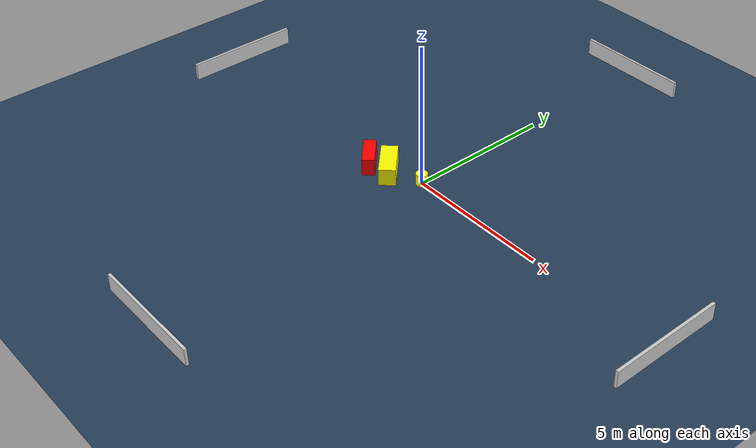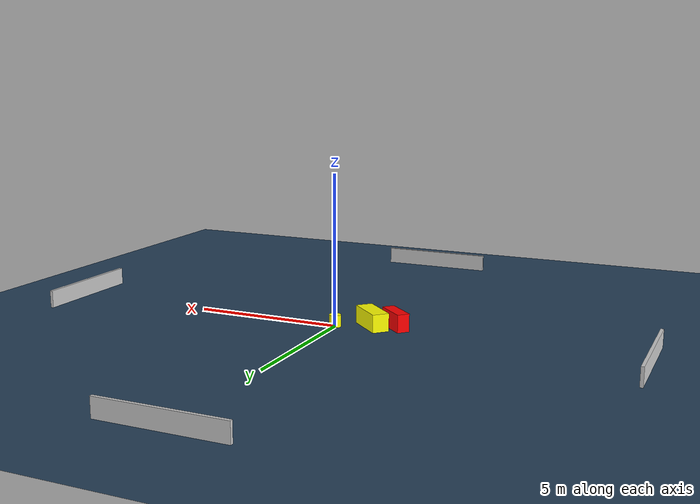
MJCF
<?xml version="1.0" ?>
<mujoco model="generated_environment">
  <option timestep="0.01" integrator="RK4" cone="elliptic"/>
  <default>
    <geom density="1"/>
  </default>
  <asset>
    <texture builtin="gradient" height="3072" name="skybox" rgb1="0.3 0.5 0.7" rgb2="0 0 0" type="skybox" width="512"/>
    <texture builtin="checker" height="300" name="groundplane" rgb1="0.2 0.3 0.4" rgb2="0.1 0.2 0.3" type="2d" width="300"/>
    <material name="groundplane" reflectance="0.2" texrepeat="5 5" texture="groundplane"/>
  </asset>
  <worldbody>
    <light dir="0 0 -1" directional="true" pos="0 0 1.5"/>
    <geom condim="3" friction="0.5 0.005 0.001" material="groundplane" name="floor" pos="0 0 0" size="0 0 0.05" type="plane"/>
    <body name="walls">
      <geom name="wall_1" condim="4" pos="-10.0 0.0 0.3" rgba="0.800000011920929 0.800000011920929 0.800000011920929 1.0" size="0.05 2.0 0.3" type="box"/>
      <geom name="wall_2" condim="4" pos="10.0 0.0 0.3" rgba="0.800000011920929 0.800000011920929 0.800000011920929 1.0" size="0.05 2.0 0.3" type="box"/>
      <geom name="wall_3" condim="4" pos="0.0 -10.0 0.3" rgba="0.800000011920929 0.800000011920929 0.800000011920929 1.0" size="2.0 0.05 0.3" type="box"/>
      <geom name="wall_4" condim="4" pos="0.0 10.0 0.3" rgba="0.800000011920929 0.800000011920929 0.800000011920929 1.0" size="2.0 0.05 0.3" type="box"/>
    </body>
    <body name="robot">
      <joint name="joint_x" type="slide" pos="0 0 0" axis="1 0 0"/>
      <joint name="joint_y" type="slide" pos="0 0 0" axis="0 1 0"/>
      <geom name="robot" type="cylinder" pos="0.0 0.0 0.2" size="0.2 0.2 0.0" mass="5.0" friction="1.0 0.005 0.0001" condim="4" rgba="1.0 1.0 0.0 1.0"/>
    </body>
    <body name="obstacle_1_movable">
      <geom name="obstacle_1_movable" condim="4" pos="-1.136264014624193 -0.432289613454997 0.3" euler="0 0 136.446540832198" friction="0.0 0.005 0.001" rgba="1.0 1.0 0.0 1.0" size="0.6787541365592487 0.2814954902743636 0.3" type="box" mass="0.1"/>
      <joint type="free"/>
    </body>
    <body name="obstacle_2_static">
      <geom name="obstacle_2_static" condim="4" pos="-1.8748249390526797 -0.6273905186080798 0.3" euler="0 0 317.31180578514505" friction="0.0 0.005 0.001" rgba="1.0 0.0 0.0 1.0" size="0.5687679101086862 0.20940044919431078 0.3" type="box"/>
    </body>
  </worldbody>
  <actuator>
    <motor name="actuator_x" joint="joint_x" gear="1" ctrlrange="-1 1"/>
    <motor name="actuator_y" joint="joint_y" gear="1" ctrlrange="-1 1"/>
  </actuator>
</mujoco>
